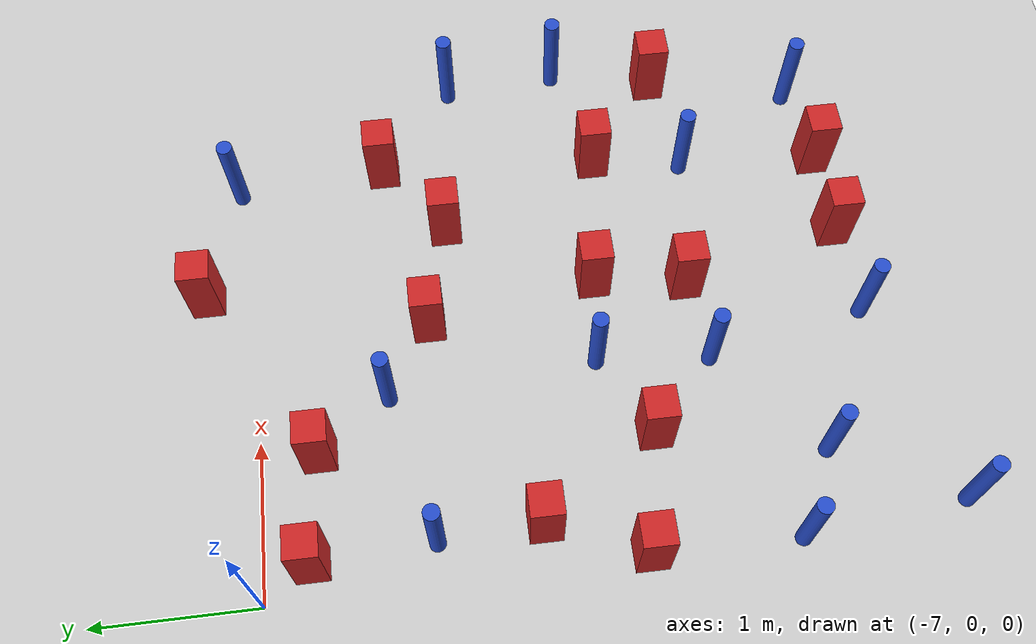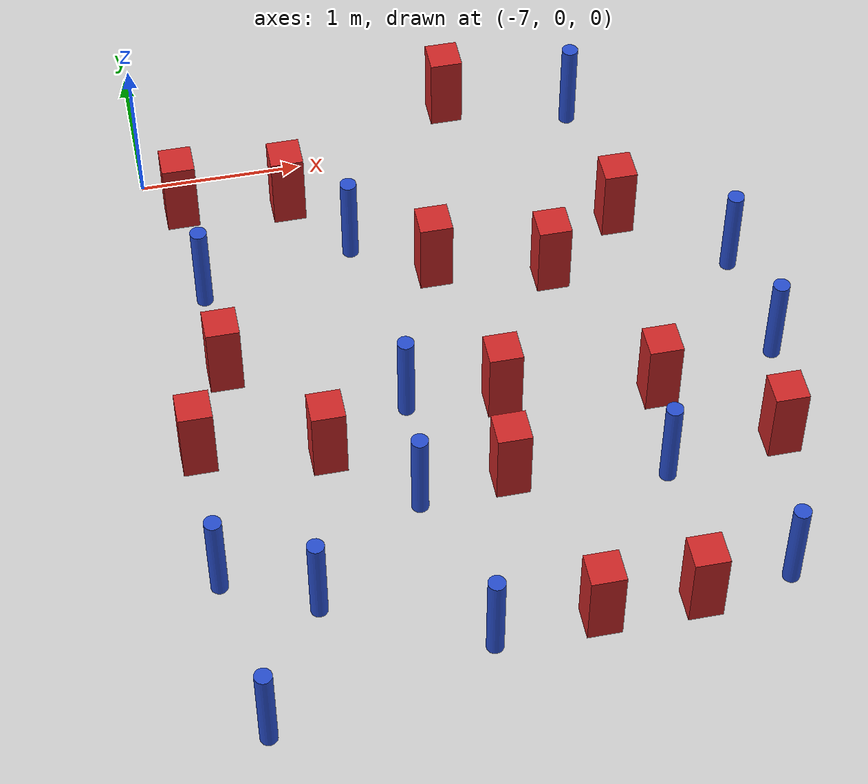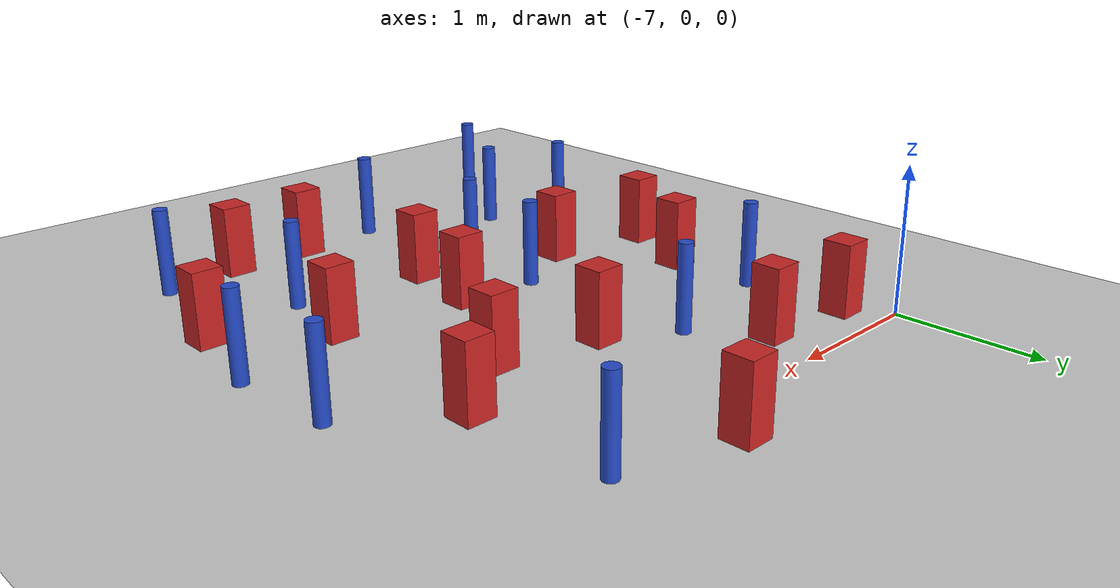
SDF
<sdf version="1.6">
 <world name="default">
  <model name="ground_plane">
   <static>1</static>
   <link name="link">
    <collision name="collision">
     <geometry><plane><normal>0 0 1</normal><size>100 100</size></plane></geometry>
     <surface><friction><ode><mu>100</mu><mu2>50</mu2></ode></friction></surface>
    </collision>
    <visual name="visual">
     <cast_shadows>0</cast_shadows>
     <geometry><plane><normal>0 0 1</normal><size>100 100</size></plane></geometry>
     <material>
      <ambient>1.0 1.0 1.0 1.0</ambient>
      <diffuse>0.8 0.8 0.8 1.0</diffuse>
      <specular>0.01 0.01 0.01 1.000000</specular>
     </material>
    </visual>
   </link>
  </model>
  <model name="pole_obstacle0">
   <static>true</static>
   <pose>-3.47626348427 -2.09135809785 7.38925637345e-09 -8.47170692798e-08 1.24976764939e-08 -1.74513093025e-07</pose>
   <link name="link">
    <pose>0 0 0.3 0 -0 0</pose>
    <inertial>
     <mass>1</mass>
     <inertia><ixx>0.145833</ixx><ixy>0</ixy><ixz>0</ixz><iyy>0.145833</iyy><iyz>0</iyz><izz>0.125</izz></inertia>
    </inertial>
    <collision name="collision">
     <geometry><cylinder><radius>0.05</radius><length>.6</length></cylinder></geometry>
    </collision>
    <visual name="visual">
     <geometry><cylinder><radius>0.05</radius><length>.6</length></cylinder></geometry>
     <material>
      <script><name>Gazebo/Blue</name><uri>file://media/materials/scripts/gazebo.material</uri></script>
     </material>
    </visual>
   </link>
  </model>
  <model name="pole_obstacle2">
   <static>true</static>
   <pose>-3.83124900783 -3.6833021294 7.38925637345e-09 -8.47170692798e-08 1.24976764939e-08 -1.74513093025e-07</pose>
   <link name="link">
    <pose>0 0 0.3 0 -0 0</pose>
    <inertial>
     <mass>1</mass>
     <inertia><ixx>0.145833</ixx><ixy>0</ixy><ixz>0</ixz><iyy>0.145833</iyy><iyz>0</iyz><izz>0.125</izz></inertia>
    </inertial>
    <collision name="collision">
     <geometry><cylinder><radius>0.05</radius><length>.6</length></cylinder></geometry>
    </collision>
    <visual name="visual">
     <geometry><cylinder><radius>0.05</radius><length>.6</length></cylinder></geometry>
     <material>
      <script><name>Gazebo/Blue</name><uri>file://media/materials/scripts/gazebo.material</uri></script>
     </material>
    </visual>
   </link>
  </model>
  <model name="square_post_obstacle4">
   <static>true</static>
   <pose>-4.94228190941 -3.76445180743 1.91545236811e-07 -7.35059704564e-06 1.12565212e-07 2.39332434364e-05</pose>
   <link name="link">
    <pose>0 0 0.25 0 -0 0</pose>
    <inertial>
     <mass>100</mass>
     <inertia>
      <ixx>0.166667</ixx>
      <ixy>0</ixy>
      <ixz>0</ixz>
      <iyy>0.166667</iyy>
      <iyz>0</iyz>
      <izz>0.166667</izz>
     </inertia>
    </inertial>
    <collision name="collision"><geometry><box><size>.2 .2 .5</size></box></geometry></collision>
    <visual name="visual">
     <geometry><box><size>.2 .2 .5</size></box></geometry>
     <material>
      <script><name>Gazebo/Red</name><uri>file://media/materials/scripts/gazebo.material</uri></script>
     </material>
    </visual>
   </link>
  </model>
  <model name="square_post_obstacle15">
   <static>true</static>
   <pose>-6.12516694566 -0.35473652986 1.91545236811e-07 -7.35059704564e-06 1.12565212e-07 2.39332434364e-05</pose>
   <link name="link">
    <pose>0 0 0.25 0 -0 0</pose>
    <inertial>
     <mass>100</mass>
     <inertia>
      <ixx>0.166667</ixx>
      <ixy>0</ixy>
      <ixz>0</ixz>
      <iyy>0.166667</iyy>
      <iyz>0</iyz>
      <izz>0.166667</izz>
     </inertia>
    </inertial>
    <collision name="collision"><geometry><box><size>.2 .2 .5</size></box></geometry></collision>
    <visual name="visual">
     <geometry><box><size>.2 .2 .5</size></box></geometry>
     <material>
      <script><name>Gazebo/Red</name><uri>file://media/materials/scripts/gazebo.material</uri></script>
     </material>
    </visual>
   </link>
  </model>
  <model name="pole_obstacle10">
   <static>true</static>
   <pose>-6.95964568385 -3.12976137409 7.38925637345e-09 -8.47170692798e-08 1.24976764937e-08 -1.74513093023e-07</pose>
   <link name="link">
    <pose>0 0 0.3 0 -0 0</pose>
    <inertial>
     <mass>1</mass>
     <inertia><ixx>0.145833</ixx><ixy>0</ixy><ixz>0</ixz><iyy>0.145833</iyy><iyz>0</iyz><izz>0.125</izz></inertia>
    </inertial>
    <collision name="collision">
     <geometry><cylinder><radius>0.05</radius><length>.6</length></cylinder></geometry>
    </collision>
    <visual name="visual">
     <geometry><cylinder><radius>0.05</radius><length>.6</length></cylinder></geometry>
     <material>
      <script><name>Gazebo/Blue</name><uri>file://media/materials/scripts/gazebo.material</uri></script>
     </material>
    </visual>
   </link>
  </model>
  <model name="pole_obstacle33">
   <static>true</static>
   <pose>-3.54106960491 -1.35461371272 7.38925637345e-09 -8.47170692796e-08 1.24976764713e-08 -1.74513093037e-07</pose>
   <link name="link">
    <pose>0 0 0.3 0 -0 0</pose>
    <inertial>
     <mass>1</mass>
     <inertia><ixx>0.145833</ixx><ixy>0</ixy><ixz>0</ixz><iyy>0.145833</iyy><iyz>0</iyz><izz>0.125</izz></inertia>
    </inertial>
    <collision name="collision">
     <geometry><cylinder><radius>0.05</radius><length>.6</length></cylinder></geometry>
    </collision>
    <visual name="visual">
     <geometry><cylinder><radius>0.05</radius><length>.6</length></cylinder></geometry>
     <material>
      <script><name>Gazebo/Blue</name><uri>file://media/materials/scripts/gazebo.material</uri></script>
     </material>
    </visual>
   </link>
  </model>
  <model name="pole_obstacle44">
   <static>true</static>
   <pose>-4.32298749021 -2.86295377761 7.38925637345e-09 -8.47170692798e-08 1.24976764937e-08 -1.74513093023e-07</pose>
   <link name="link">
    <pose>0 0 0.3 0 -0 0</pose>
    <inertial>
     <mass>1</mass>
     <inertia><ixx>0.145833</ixx><ixy>0</ixy><ixz>0</ixz><iyy>0.145833</iyy><iyz>0</iyz><izz>0.125</izz></inertia>
    </inertial>
    <collision name="collision">
     <geometry><cylinder><radius>0.05</radius><length>.6</length></cylinder></geometry>
    </collision>
    <visual name="visual">
     <geometry><cylinder><radius>0.05</radius><length>.6</length></cylinder></geometry>
     <material>
      <script><name>Gazebo/Blue</name><uri>file://media/materials/scripts/gazebo.material</uri></script>
     </material>
    </visual>
   </link>
  </model>
  <model name="pole_obstacle50">
   <static>true</static>
   <pose>-5.54593377779 -3.81472021383 7.38925637345e-09 -8.47170692798e-08 1.24976764937e-08 -1.74513093023e-07</pose>
   <link name="link">
    <pose>0 0 0.3 0 -0 0</pose>
    <inertial>
     <mass>1</mass>
     <inertia><ixx>0.145833</ixx><ixy>0</ixy><ixz>0</ixz><iyy>0.145833</iyy><iyz>0</iyz><izz>0.125</izz></inertia>
    </inertial>
    <collision name="collision">
     <geometry><cylinder><radius>0.05</radius><length>.6</length></cylinder></geometry>
    </collision>
    <visual name="visual">
     <geometry><cylinder><radius>0.05</radius><length>.6</length></cylinder></geometry>
     <material>
      <script><name>Gazebo/Blue</name><uri>file://media/materials/scripts/gazebo.material</uri></script>
     </material>
    </visual>
   </link>
  </model>
  <model name="square_post_obstacle58">
   <static>true</static>
   <pose>-5.33617169923 -1.07786139157 1.91545236811e-07 -7.35059704564e-06 1.12565212e-07 2.39332434364e-05</pose>
   <link name="link">
    <pose>0 0 0.25 0 -0 0</pose>
    <inertial>
     <mass>100</mass>
     <inertia>
      <ixx>0.166667</ixx>
      <ixy>0</ixy>
      <ixz>0</ixz>
      <iyy>0.166667</iyy>
      <iyz>0</iyz>
      <izz>0.166667</izz>
     </inertia>
    </inertial>
    <collision name="collision"><geometry><box><size>.2 .2 .5</size></box></geometry></collision>
    <visual name="visual">
     <geometry><box><size>.2 .2 .5</size></box></geometry>
     <material>
      <script><name>Gazebo/Red</name><uri>file://media/materials/scripts/gazebo.material</uri></script>
     </material>
    </visual>
   </link>
  </model>
  <model name="square_post_obstacle59">
   <static>true</static>
   <pose>-4.64176704061 -1.24235177643 1.91545236811e-07 -7.35059704564e-06 1.12565212e-07 2.39332434364e-05</pose>
   <link name="link">
    <pose>0 0 0.25 0 -0 0</pose>
    <inertial>
     <mass>100</mass>
     <inertia>
      <ixx>0.166667</ixx>
      <ixy>0</ixy>
      <ixz>0</ixz>
      <iyy>0.166667</iyy>
      <iyz>0</iyz>
      <izz>0.166667</izz>
     </inertia>
    </inertial>
    <collision name="collision"><geometry><box><size>.2 .2 .5</size></box></geometry></collision>
    <visual name="visual">
     <geometry><box><size>.2 .2 .5</size></box></geometry>
     <material>
      <script><name>Gazebo/Red</name><uri>file://media/materials/scripts/gazebo.material</uri></script>
     </material>
    </visual>
   </link>
  </model>
  <model name="pole_obstacle59">
   <static>true</static>
   <pose>-5.702376485 -2.09050226253 7.38925637345e-09 -8.47170692798e-08 1.24976764937e-08 -1.74513093023e-07</pose>
   <link name="link">
    <pose>0 0 0.3 0 -0 0</pose>
    <inertial>
     <mass>1</mass>
     <inertia><ixx>0.145833</ixx><ixy>0</ixy><ixz>0</ixz><iyy>0.145833</iyy><iyz>0</iyz><izz>0.125</izz></inertia>
    </inertial>
    <collision name="collision">
     <geometry><cylinder><radius>0.05</radius><length>.6</length></cylinder></geometry>
    </collision>
    <visual name="visual">
     <geometry><cylinder><radius>0.05</radius><length>.6</length></cylinder></geometry>
     <material>
      <script><name>Gazebo/Blue</name><uri>file://media/materials/scripts/gazebo.material</uri></script>
     </material>
    </visual>
   </link>
  </model>
  <model name="square_post_obstacle75">
   <static>true</static>
   <pose>-6.21620699617 -2.37087554527 1.91545236811e-07 -7.35059704564e-06 1.12565212e-07 2.39332434364e-05</pose>
   <link name="link">
    <pose>0 0 0.25 0 -0 0</pose>
    <inertial>
     <mass>100</mass>
     <inertia>
      <ixx>0.166667</ixx>
      <ixy>0</ixy>
      <ixz>0</ixz>
      <iyy>0.166667</iyy>
      <iyz>0</iyz>
      <izz>0.166667</izz>
     </inertia>
    </inertial>
    <collision name="collision"><geometry><box><size>.2 .2 .5</size></box></geometry></collision>
    <visual name="visual">
     <geometry><box><size>.2 .2 .5</size></box></geometry>
     <material>
      <script><name>Gazebo/Red</name><uri>file://media/materials/scripts/gazebo.material</uri></script>
     </material>
    </visual>
   </link>
  </model>
  <model name="pole_obstacle83">
   <static>true</static>
   <pose>-4.22010175236 0.0912814891144 7.38925637345e-09 -8.47170692799e-08 1.24976765066e-08 -1.74513093016e-07</pose>
   <link name="link">
    <pose>0 0 0.3 0 -0 0</pose>
    <inertial>
     <mass>1</mass>
     <inertia><ixx>0.145833</ixx><ixy>0</ixy><ixz>0</ixz><iyy>0.145833</iyy><iyz>0</iyz><izz>0.125</izz></inertia>
    </inertial>
    <collision name="collision">
     <geometry><cylinder><radius>0.05</radius><length>.6</length></cylinder></geometry>
    </collision>
    <visual name="visual">
     <geometry><cylinder><radius>0.05</radius><length>.6</length></cylinder></geometry>
     <material>
      <script><name>Gazebo/Blue</name><uri>file://media/materials/scripts/gazebo.material</uri></script>
     </material>
    </visual>
   </link>
  </model>
  <model name="pole_obstacle104">
   <static>true</static>
   <pose>-6.4433133397 -3.38967268869 7.38925637345e-09 -8.47170692798e-08 1.24976764937e-08 -1.74513093023e-07</pose>
   <link name="link">
    <pose>0 0 0.3 0 -0 0</pose>
    <inertial>
     <mass>1</mass>
     <inertia><ixx>0.145833</ixx><ixy>0</ixy><ixz>0</ixz><iyy>0.145833</iyy><iyz>0</iyz><izz>0.125</izz></inertia>
    </inertial>
    <collision name="collision">
     <geometry><cylinder><radius>0.05</radius><length>.6</length></cylinder></geometry>
    </collision>
    <visual name="visual">
     <geometry><cylinder><radius>0.05</radius><length>.6</length></cylinder></geometry>
     <material>
      <script><name>Gazebo/Blue</name><uri>file://media/materials/scripts/gazebo.material</uri></script>
     </material>
    </visual>
   </link>
  </model>
  <model name="square_post_obstacle99">
   <static>true</static>
   <pose>-4.99266056635 0.30987088293 1.91545236811e-07 -7.35059704564e-06 1.12565212e-07 2.39332434364e-05</pose>
   <link name="link">
    <pose>0 0 0.25 0 -0 0</pose>
    <inertial>
     <mass>100</mass>
     <inertia>
      <ixx>0.166667</ixx>
      <ixy>0</ixy>
      <ixz>0</ixz>
      <iyy>0.166667</iyy>
      <iyz>0</iyz>
      <izz>0.166667</izz>
     </inertia>
    </inertial>
    <collision name="collision"><geometry><box><size>.2 .2 .5</size></box></geometry></collision>
    <visual name="visual">
     <geometry><box><size>.2 .2 .5</size></box></geometry>
     <material>
      <script><name>Gazebo/Red</name><uri>file://media/materials/scripts/gazebo.material</uri></script>
     </material>
    </visual>
   </link>
  </model>
  <model name="pole_obstacle116">
   <static>true</static>
   <pose>-5.76061612195 -2.8009423948 7.38925637345e-09 -8.47170692798e-08 1.24976764937e-08 -1.74513093023e-07</pose>
   <link name="link">
    <pose>0 0 0.3 0 -0 0</pose>
    <inertial>
     <mass>1</mass>
     <inertia><ixx>0.145833</ixx><ixy>0</ixy><ixz>0</ixz><iyy>0.145833</iyy><iyz>0</iyz><izz>0.125</izz></inertia>
    </inertial>
    <collision name="collision">
     <geometry><cylinder><radius>0.05</radius><length>.6</length></cylinder></geometry>
    </collision>
    <visual name="visual">
     <geometry><cylinder><radius>0.05</radius><length>.6</length></cylinder></geometry>
     <material>
      <script><name>Gazebo/Blue</name><uri>file://media/materials/scripts/gazebo.material</uri></script>
     </material>
    </visual>
   </link>
  </model>
  <model name="square_post_obstacle127">
   <static>true</static>
   <pose>-4.1450002115 -0.867577687956 1.91545236811e-07 -7.35059704564e-06 1.12565212e-07 2.39332434364e-05</pose>
   <link name="link">
    <pose>0 0 0.25 0 -0 0</pose>
    <inertial>
     <mass>100</mass>
     <inertia>
      <ixx>0.166667</ixx>
      <ixy>0</ixy>
      <ixz>0</ixz>
      <iyy>0.166667</iyy>
      <iyz>0</iyz>
      <izz>0.166667</izz>
     </inertia>
    </inertial>
    <collision name="collision"><geometry><box><size>.2 .2 .5</size></box></geometry></collision>
    <visual name="visual">
     <geometry><box><size>.2 .2 .5</size></box></geometry>
     <material>
      <script><name>Gazebo/Red</name><uri>file://media/materials/scripts/gazebo.material</uri></script>
     </material>
    </visual>
   </link>
  </model>
  <model name="square_post_obstacle131">
   <static>true</static>
   <pose>-6.94998074292 -2.22711516486 1.91545236811e-07 -7.35059704564e-06 1.12565212e-07 2.39332434364e-05</pose>
   <link name="link">
    <pose>0 0 0.25 0 -0 0</pose>
    <inertial>
     <mass>100</mass>
     <inertia>
      <ixx>0.166667</ixx>
      <ixy>0</ixy>
      <ixz>0</ixz>
      <iyy>0.166667</iyy>
      <iyz>0</iyz>
      <izz>0.166667</izz>
     </inertia>
    </inertial>
    <collision name="collision"><geometry><box><size>.2 .2 .5</size></box></geometry></collision>
    <visual name="visual">
     <geometry><box><size>.2 .2 .5</size></box></geometry>
     <material>
      <script><name>Gazebo/Red</name><uri>file://media/materials/scripts/gazebo.material</uri></script>
     </material>
    </visual>
   </link>
  </model>
  <model name="pole_obstacle144">
   <static>true</static>
   <pose>-5.80365485786 -0.790895479901 7.38925637345e-09 -8.47170692799e-08 1.24976765038e-08 -1.74513093018e-07</pose>
   <link name="link">
    <pose>0 0 0.3 0 -0 0</pose>
    <inertial>
     <mass>1</mass>
     <inertia><ixx>0.145833</ixx><ixy>0</ixy><ixz>0</ixz><iyy>0.145833</iyy><iyz>0</iyz><izz>0.125</izz></inertia>
    </inertial>
    <collision name="collision">
     <geometry><cylinder><radius>0.05</radius><length>.6</length></cylinder></geometry>
    </collision>
    <visual name="visual">
     <geometry><cylinder><radius>0.05</radius><length>.6</length></cylinder></geometry>
     <material>
      <script><name>Gazebo/Blue</name><uri>file://media/materials/scripts/gazebo.material</uri></script>
     </material>
    </visual>
   </link>
  </model>
  <model name="square_post_obstacle140">
   <static>true</static>
   <pose>-3.62150908893 -2.75184647773 1.91545236811e-07 -7.35059704564e-06 1.12565212e-07 2.39332434364e-05</pose>
   <link name="link">
    <pose>0 0 0.25 0 -0 0</pose>
    <inertial>
     <mass>100</mass>
     <inertia>
      <ixx>0.166667</ixx>
      <ixy>0</ixy>
      <ixz>0</ixz>
      <iyy>0.166667</iyy>
      <iyz>0</iyz>
      <izz>0.166667</izz>
     </inertia>
    </inertial>
    <collision name="collision"><geometry><box><size>.2 .2 .5</size></box></geometry></collision>
    <visual name="visual">
     <geometry><box><size>.2 .2 .5</size></box></geometry>
     <material>
      <script><name>Gazebo/Red</name><uri>file://media/materials/scripts/gazebo.material</uri></script>
     </material>
    </visual>
   </link>
  </model>
  <model name="square_post_obstacle152">
   <static>true</static>
   <pose>-6.71019114065 -1.64083482325 1.91545236811e-07 -7.35059704564e-06 1.12565212e-07 2.39332434364e-05</pose>
   <link name="link">
    <pose>0 0 0.25 0 -0 0</pose>
    <inertial>
     <mass>100</mass>
     <inertia>
      <ixx>0.166667</ixx>
      <ixy>0</ixy>
      <ixz>0</ixz>
      <iyy>0.166667</iyy>
      <iyz>0</iyz>
      <izz>0.166667</izz>
     </inertia>
    </inertial>
    <collision name="collision"><geometry><box><size>.2 .2 .5</size></box></geometry></collision>
    <visual name="visual">
     <geometry><box><size>.2 .2 .5</size></box></geometry>
     <material>
      <script><name>Gazebo/Red</name><uri>file://media/materials/scripts/gazebo.material</uri></script>
     </material>
    </visual>
   </link>
  </model>
  <model name="square_post_obstacle153">
   <static>true</static>
   <pose>-4.36937615305 -3.76004811518 1.91545236811e-07 -7.35059704564e-06 1.12565212e-07 2.39332434364e-05</pose>
   <link name="link">
    <pose>0 0 0.25 0 -0 0</pose>
    <inertial>
     <mass>100</mass>
     <inertia>
      <ixx>0.166667</ixx>
      <ixy>0</ixy>
      <ixz>0</ixz>
      <iyy>0.166667</iyy>
      <iyz>0</iyz>
      <izz>0.166667</izz>
     </inertia>
    </inertial>
    <collision name="collision"><geometry><box><size>.2 .2 .5</size></box></geometry></collision>
    <visual name="visual">
     <geometry><box><size>.2 .2 .5</size></box></geometry>
     <material>
      <script><name>Gazebo/Red</name><uri>file://media/materials/scripts/gazebo.material</uri></script>
     </material>
    </visual>
   </link>
  </model>
  <model name="pole_obstacle163">
   <static>true</static>
   <pose>-6.74342009509 -1.01037513458 7.38925637345e-09 -8.471706928e-08 1.24976765101e-08 -1.74513093015e-07</pose>
   <link name="link">
    <pose>0 0 0.3 0 -0 0</pose>
    <inertial>
     <mass>1</mass>
     <inertia><ixx>0.145833</ixx><ixy>0</ixy><ixz>0</ixz><iyy>0.145833</iyy><iyz>0</iyz><izz>0.125</izz></inertia>
    </inertial>
    <collision name="collision">
     <geometry><cylinder><radius>0.05</radius><length>.6</length></cylinder></geometry>
    </collision>
    <visual name="visual">
     <geometry><cylinder><radius>0.05</radius><length>.6</length></cylinder></geometry>
     <material>
      <script><name>Gazebo/Blue</name><uri>file://media/materials/scripts/gazebo.material</uri></script>
     </material>
    </visual>
   </link>
  </model>
  <model name="square_post_obstacle165">
   <static>true</static>
   <pose>-4.22900204314 -2.27198600877 1.91545236811e-07 -7.35059704564e-06 1.12565212e-07 2.39332434364e-05</pose>
   <link name="link">
    <pose>0 0 0.25 0 -0 0</pose>
    <inertial>
     <mass>100</mass>
     <inertia>
      <ixx>0.166667</ixx>
      <ixy>0</ixy>
      <ixz>0</ixz>
      <iyy>0.166667</iyy>
      <iyz>0</iyz>
      <izz>0.166667</izz>
     </inertia>
    </inertial>
    <collision name="collision"><geometry><box><size>.2 .2 .5</size></box></geometry></collision>
    <visual name="visual">
     <geometry><box><size>.2 .2 .5</size></box></geometry>
     <material>
      <script><name>Gazebo/Red</name><uri>file://media/materials/scripts/gazebo.material</uri></script>
     </material>
    </visual>
   </link>
  </model>
  <model name="square_post_obstacle166">
   <static>true</static>
   <pose>-5.14342567236 -2.14890510595 1.91545236811e-07 -7.35059704564e-06 1.12565212e-07 2.39332434364e-05</pose>
   <link name="link">
    <pose>0 0 0.25 0 -0 0</pose>
    <inertial>
     <mass>100</mass>
     <inertia>
      <ixx>0.166667</ixx>
      <ixy>0</ixy>
      <ixz>0</ixz>
      <iyy>0.166667</iyy>
      <iyz>0</iyz>
      <izz>0.166667</izz>
     </inertia>
    </inertial>
    <collision name="collision"><geometry><box><size>.2 .2 .5</size></box></geometry></collision>
    <visual name="visual">
     <geometry><box><size>.2 .2 .5</size></box></geometry>
     <material>
      <script><name>Gazebo/Red</name><uri>file://media/materials/scripts/gazebo.material</uri></script>
     </material>
    </visual>
   </link>
  </model>
  <model name="square_post_obstacle167">
   <static>true</static>
   <pose>-5.2225756514 -2.72970848188 1.91545236811e-07 -7.35059704564e-06 1.12565212e-07 2.39332434364e-05</pose>
   <link name="link">
    <pose>0 0 0.25 0 -0 0</pose>
    <inertial>
     <mass>100</mass>
     <inertia>
      <ixx>0.166667</ixx>
      <ixy>0</ixy>
      <ixz>0</ixz>
      <iyy>0.166667</iyy>
      <iyz>0</iyz>
      <izz>0.166667</izz>
     </inertia>
    </inertial>
    <collision name="collision"><geometry><box><size>.2 .2 .5</size></box></geometry></collision>
    <visual name="visual">
     <geometry><box><size>.2 .2 .5</size></box></geometry>
     <material>
      <script><name>Gazebo/Red</name><uri>file://media/materials/scripts/gazebo.material</uri></script>
     </material>
    </visual>
   </link>
  </model>
  <model name="square_post_obstacle195">
   <static>true</static>
   <pose>-6.78594443268 -0.284525703883 1.91545236811e-07 -7.35059704564e-06 1.12565212e-07 2.39332434364e-05</pose>
   <link name="link">
    <pose>0 0 0.25 0 -0 0</pose>
    <inertial>
     <mass>100</mass>
     <inertia>
      <ixx>0.166667</ixx>
      <ixy>0</ixy>
      <ixz>0</ixz>
      <iyy>0.166667</iyy>
      <iyz>0</iyz>
      <izz>0.166667</izz>
     </inertia>
    </inertial>
    <collision name="collision"><geometry><box><size>.2 .2 .5</size></box></geometry></collision>
    <visual name="visual">
     <geometry><box><size>.2 .2 .5</size></box></geometry>
     <material>
      <script><name>Gazebo/Red</name><uri>file://media/materials/scripts/gazebo.material</uri></script>
     </material>
    </visual>
   </link>
  </model>
  <model name="pole_obstacle205">
   <static>true</static>
   <pose>-6.84272539225 -4.14166700371 7.38925637345e-09 -8.47170692796e-08 1.24976764786e-08 -1.74513093032e-07</pose>
   <link name="link">
    <pose>0 0 0.3 0 -0 0</pose>
    <inertial>
     <mass>1</mass>
     <inertia><ixx>0.145833</ixx><ixy>0</ixy><ixz>0</ixz><iyy>0.145833</iyy><iyz>0</iyz><izz>0.125</izz></inertia>
    </inertial>
    <collision name="collision">
     <geometry><cylinder><radius>0.05</radius><length>.6</length></cylinder></geometry>
    </collision>
    <visual name="visual">
     <geometry><cylinder><radius>0.05</radius><length>.6</length></cylinder></geometry>
     <material>
      <script><name>Gazebo/Blue</name><uri>file://media/materials/scripts/gazebo.material</uri></script>
     </material>
    </visual>
   </link>
  </model>
 </world>
</sdf>
